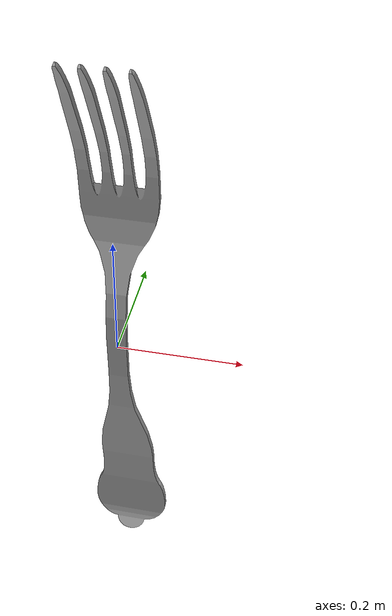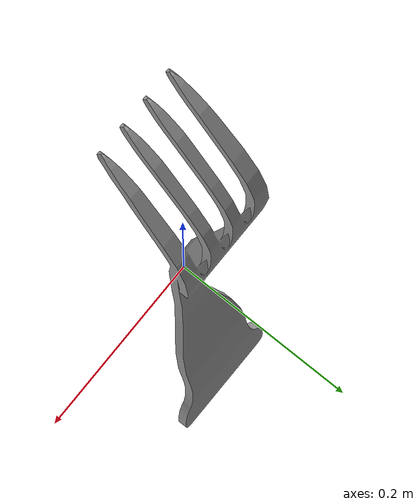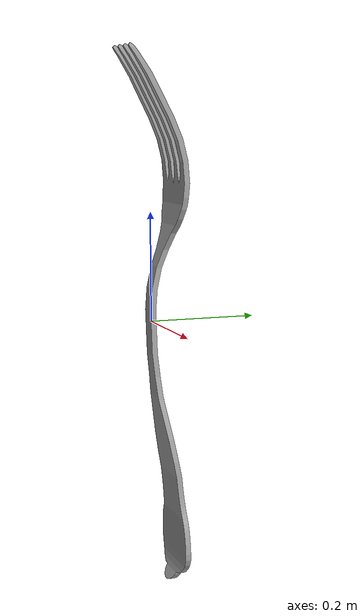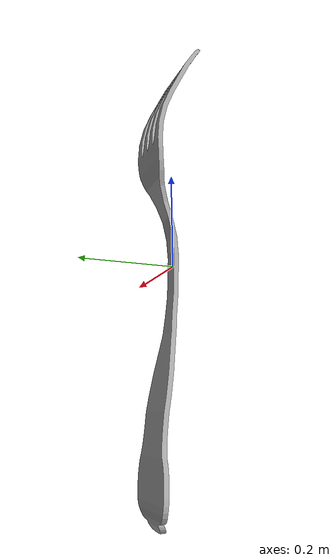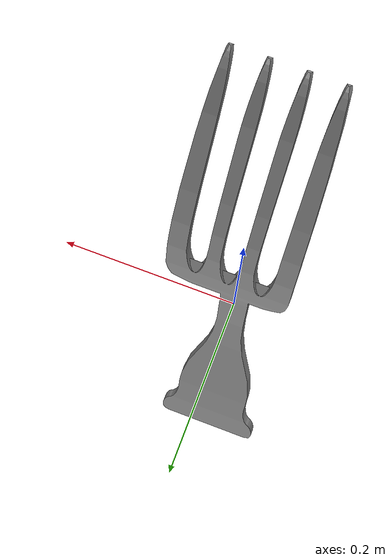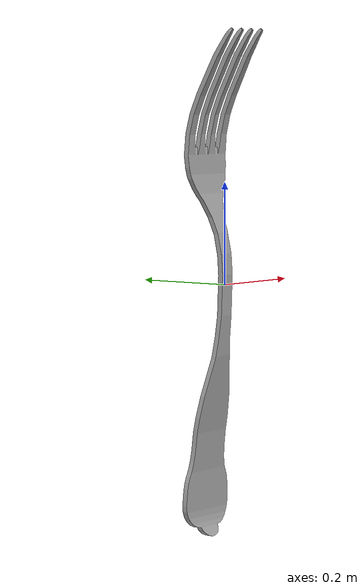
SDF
<?xml version="1.0" ?>
<sdf version="1.5">
  <model name='cutlery4'>
    <pose>0 0 0 0 0 0</pose>
    <static>1</static>
    <link name='body'>
      <collision name="cutlery4-coll">
        <pose>0 0 -0.5 0 0 0</pose>
        <geometry>
          <mesh>
            <uri>model://cutlery4/meshes/cutlery4.dae</uri>
          </mesh>
        </geometry>
      </collision>
      <visual name='cutlery4'>
        <cast_shadows>1</cast_shadows>
        <pose>0 0 -0.5 0 0 0</pose>
        <geometry>
          <mesh>
            <uri>model://cutlery4/meshes/cutlery4.dae</uri>
          </mesh>
        </geometry>
      </visual>
      <velocity_decay>
        <linear>0</linear>
        <angular>0</angular>
      </velocity_decay>
      <self_collide>0</self_collide>
      <kinematic>0</kinematic>
      <gravity>1</gravity>
    </link>
  </model>

</sdf>
